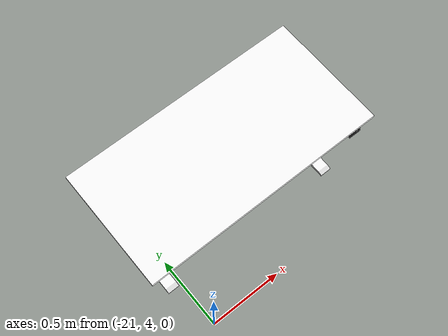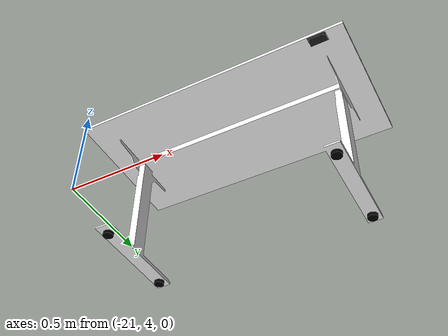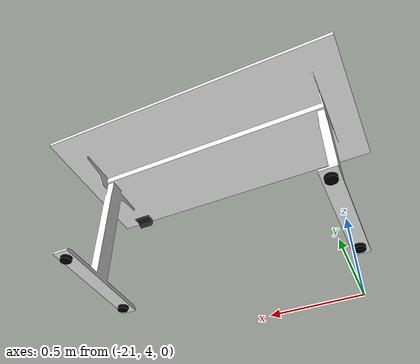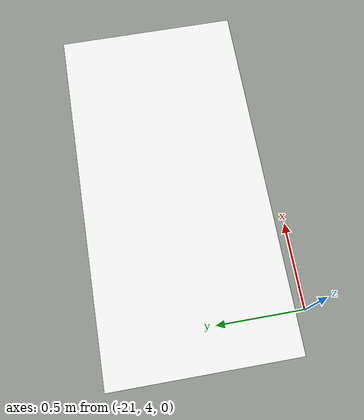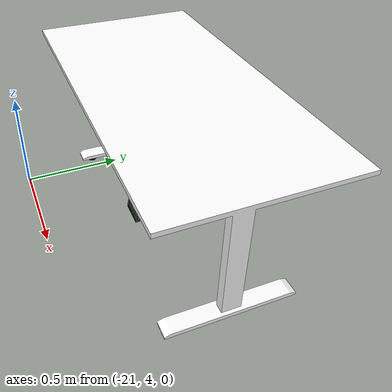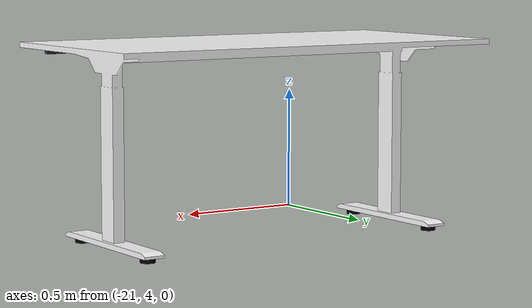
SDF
<?xml version="1.0"?>

<sdf version="1.4">
    <model name="desk2">
        <static>true</static>
        <link name="desk3_link">

            <visual name="desk3_mesh">
                <geometry>
                    <mesh>
                        <uri>model://desk3/meshes/model.dae</uri>
                    </mesh>
                </geometry>
            </visual>

            <collision name="desk3_collison">
                <pose> -20.431646 4.602402 0.394284 0 0 0</pose>
                <geometry>
                    <box>
                        <size>1.591670 0.804758 0.765207</size>
                    </box>
                </geometry>
            </collision>
        </link>
    </model>
</sdf>
